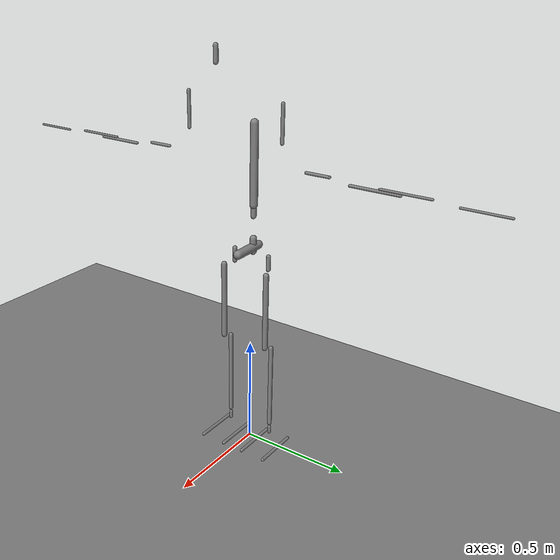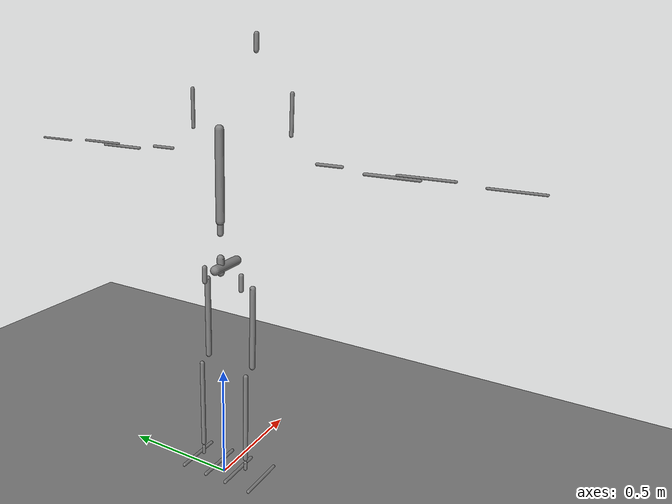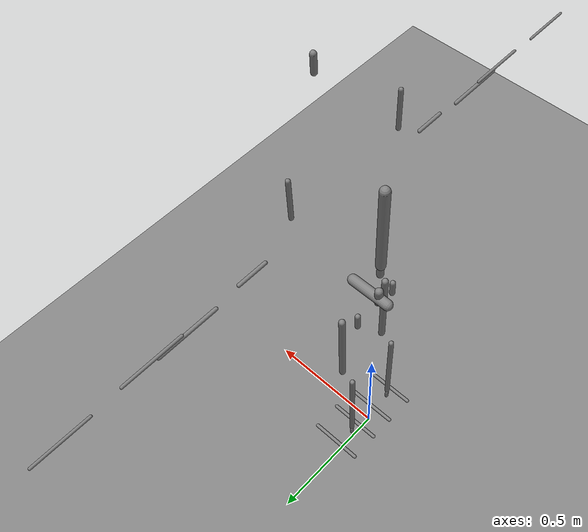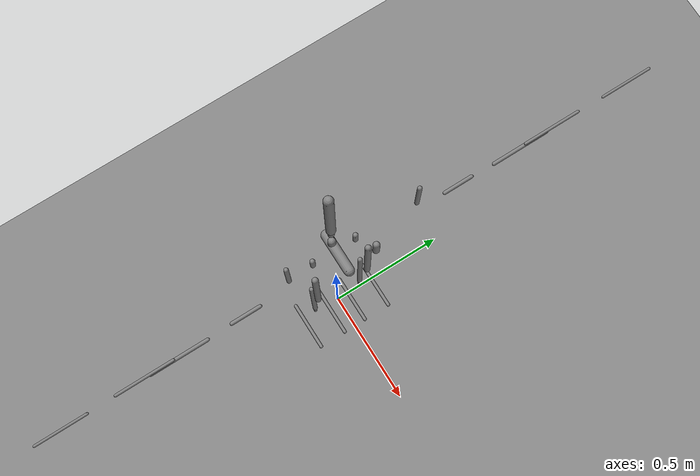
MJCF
<mujoco model="atlas_working_scene">
  <include file="atlas_working.xml" />

  <worldbody>
    <geom name="floor" type="plane" size="10 10 0.1" pos="0 0 0" condim="3" />
    <light pos="0 0 3" dir="0 0 -1" diffuse="0.7 0.7 0.7" />
    <light pos="0 2 2" dir="0 -1 -1" diffuse="0.5 0.5 0.5" />
  </worldbody>
</mujoco>

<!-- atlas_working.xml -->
<mujoco model="atlas">
  <option timestep="0.005" impratio="10" solver="Newton" iterations="200" />
  <compiler angle="radian" autolimits="true" />

  <statistic meansize="0.216123" extent="2.3196" center="-0.000225445 0 0.0799605" />

  <worldbody>
    <body name="pelvis" pos="0 0 0.95">
      <freejoint />
      <inertial pos="0.0111 0 0.0271" quat="0.698584 0.713914 0.0424837 -0.0224092" mass="9.509"
        diaginertia="0.124488 0.116646 0.0957666" />
      <geom type="capsule" fromto="-0.05 0 0.02 0.1 0 0.02" size="0.0200"
        condim="1" solimp=".9 .99 .003" solref=".015 1" contype="1" conaffinity="1" />
      <body name="ltorso" pos="-0.0125 0 0">
        <inertial pos="-0.0112984 -3.15366e-06 0.0746835"
          quat="0.997071 0.000128212 0.076485 -0.00012406" mass="2.27"
          diaginertia="0.003962 0.00341694 0.00169212" />
        <joint name="back_bkz" pos="0 0 0" axis="0 0 1" range="-0.663225 0.663225"
          damping="0.2" stiffness="1" armature="0.01" />
        <geom type="capsule" fromto="0 0 0 0 0 0.06" size="0.0150"
          condim="1" solimp=".9 .99 .003" solref=".015 1" />
        <body name="mtorso" pos="0 0 0.162">
          <inertial pos="-0.00816266 -0.0131245 0.0305974" quat="0.108378 0.49314 0.746335 0.433648"
            mass="0.799" diaginertia="0.000536243 0.000487378 0.000358057" />
          <joint name="back_bky" pos="0 0 0" axis="0 1 0" range="-0.219388 0.538783"
            damping="0.2" stiffness="1" armature="0.01" />
          <geom type="capsule" fromto="0 0 0 0 0 0.04" size="0.0125"
            condim="1" solimp=".9 .99 .003" solref=".015 1" />
          <body name="utorso" pos="0 0 0.05">
            <inertial pos="-0.0616866 0.00229456 0.316809"
              quat="0.483464 -0.0233226 -0.0389662 0.874186" mass="84.609"
              diaginertia="1.67522 1.61265 0.568768" />
            <joint name="back_bkx" pos="0 0 0" axis="1 0 0" range="-0.523599 0.523599"
              damping="0.2" stiffness="1" armature="0.01" />
            <geom type="capsule" fromto="0 0 0 0 0 0.35" size="0.0175"
              condim="1" solimp=".9 .99 .003" solref=".015 1" />
            <body name="l_clav" pos="0.1406 0.2256 0.4776" quat="0 0 0 1">
              <inertial pos="0 0 -0.084" quat="0.684588 0.177029 -0.177029 0.684588" mass="4.466"
                diaginertia="0.011217 0.011 0.00178301" />
              <joint name="l_arm_shz" pos="0 0 0" axis="0 0 1" range="-1.5708 0.785398"
                damping="0.2" stiffness="1" armature="0.01" />
              <geom type="capsule" fromto="0 0 0 0 0 -0.15" size="0.0075"
                condim="1" solimp=".9 .99 .003" solref=".015 1" />
              <body name="l_scap" pos="0 -0.11 -0.245">
                <inertial pos="0 0 0" quat="0.5 0.5 0.5 0.5" mass="3.899"
                  diaginertia="0.00583 0.00583 0.00319" />
                <joint name="l_arm_shx" pos="0 0 0" axis="-1 0 0" range="-1.5708 1.5708"
                  damping="0.2" stiffness="1" armature="0.01" />
                <geom type="capsule" fromto="0 0 0 0 -0.1 0" size="0.0062"
                  condim="1" solimp=".9 .99 .003" solref=".015 1" />
                <body name="l_uarm" pos="0 -0.187 -0.016">
                  <inertial pos="0 0.065 0" quat="0.707107 0.707107 0 0" mass="4.386"
                    diaginertia="0.00656 0.00656 0.00358" />
                  <joint name="l_arm_ely" pos="0 0 0" axis="0 -1 0" range="0 3.14159"
                    damping="0.2" stiffness="1" armature="0.01" />
                  <geom type="capsule" fromto="0 0 0 0 -0.2 0" size="0.0062"
                    condim="1" solimp=".9 .99 .003" solref=".015 1" />
                  <body name="l_larm" pos="0 -0.119 0.0092">
                    <inertial pos="0 0 0" quat="0.5 0.5 0.5 0.5" mass="3.248"
                      diaginertia="0.00446 0.00446 0.00265" />
                    <joint name="l_arm_elx" pos="0 0 0" axis="-1 0 0" range="0 2.35619"
                      damping="0.2" stiffness="1" armature="0.01" />
                    <geom type="capsule" fromto="0 0 0 0 -0.2 0" size="0.0050"
                      condim="1" solimp=".9 .99 .003" solref=".015 1" />
                    <body name="l_ufarm" pos="0 -0.29955 -0.00921" quat="0 0 1 0">
                      <inertial pos="0.00015 0.08296 0.00037" quat="0.707107 0.707107 0 0"
                        mass="2.4798" diaginertia="0.012731 0.011948 0.002857" />
                      <joint name="l_arm_uwy" pos="0 0 0" axis="0 -1 0" range="-3.011 3.011"
                        damping="0.2" stiffness="1" armature="0.01" />
                      <geom type="capsule" fromto="0 0 0 0 -0.18 0" size="0.0045"
                        condim="1" solimp=".9 .99 .003" solref=".015 1" />
                      <body name="l_lfarm">
                        <inertial pos="0.00017 -0.02515 0.00163" quat="0.5 0.5 -0.5 0.5"
                          mass="0.648" diaginertia="0.000825 0.000764 0.000429" />
                        <joint name="l_arm_mwx" pos="0 0 0" axis="1 0 0" range="-1.7628 1.7628"
                          damping="0.2" stiffness="1" armature="0.01" />
                        <geom type="capsule" fromto="0 0 0 0 -0.06 0" size="0.0037"
                          condim="1" solimp=".9 .99 .003" solref=".015 1" />
                        <body name="l_hand" quat="0 0 1 0">
                          <inertial pos="0.000136605 -0.0878643 1.70756e-05"
                            quat="0.706663 0.707538 -0.00305426 -0.0030225" mass="0.6839"
                            diaginertia="0.000555209 0.000546206 0.000486997" />
                          <joint name="l_arm_lwy" pos="0 0 0" axis="0 -1 0" range="-2.9671 2.9671"
                            damping="0.2" stiffness="1" armature="0.01" />
                          <geom type="capsule" fromto="0 0 0 0 -0.08 0" size="0.0030"
                            condim="1" solimp=".9 .99 .003" solref=".015 1" />
                        </body>
                      </body>
                    </body>
                  </body>
                </body>
              </body>
            </body>
            <body name="head" pos="0.2546 0 0.6215">
              <inertial pos="-0.0526114 3.39872e-05 0.0260689"
                quat="-0.00433632 0.59051 -0.00248869 0.807015" mass="2.08756"
                diaginertia="0.0135173 0.0133409 0.0119567" />
              <joint name="neck_ay" pos="0 0 0" axis="0 1 0" range="-0.602139 1.14319"
                damping="0.2" stiffness="1" armature="0.01" />
              <geom type="capsule" fromto="0 0 0 0 0 0.06" size="0.0100"
                condim="1" solimp=".9 .99 .003" solref=".015 1" />
            </body>
            <body name="r_clav" pos="0.1406 -0.2256 0.4776">
              <inertial pos="0 0 -0.084" quat="0.684588 0.177029 -0.177029 0.684588" mass="4.466"
                diaginertia="0.011217 0.011 0.00178301" />
              <joint name="r_arm_shz" pos="0 0 0" axis="0 0 1" range="-0.785398 1.5708"
                damping="0.2" stiffness="1" armature="0.01" />
              <geom type="capsule" fromto="0 0 0 0 0 -0.15" size="0.0075"
                condim="1" solimp=".9 .99 .003" solref=".015 1" />
              <body name="r_scap" pos="0 -0.11 -0.245">
                <inertial pos="0 0 0" quat="0.5 0.5 0.5 0.5" mass="3.899"
                  diaginertia="0.00583 0.00583 0.00319" />
                <joint name="r_arm_shx" pos="0 0 0" axis="1 0 0" range="-1.5708 1.5708"
                  damping="0.2" stiffness="1" armature="0.01" />
                <geom type="capsule" fromto="0 0 0 0 -0.1 0" size="0.0062"
                  condim="1" solimp=".9 .99 .003" solref=".015 1" />
                <body name="r_uarm" pos="0 -0.187 -0.016">
                  <inertial pos="0 0.065 0" quat="0.707107 0.707107 0 0" mass="4.386"
                    diaginertia="0.00656 0.00656 0.00358" />
                  <joint name="r_arm_ely" pos="0 0 0" axis="0 1 0" range="0 3.14159"
                    damping="0.2" stiffness="1" armature="0.01" />
                  <geom type="capsule" fromto="0 0 0 0 -0.2 0" size="0.0062"
                    condim="1" solimp=".9 .99 .003" solref=".015 1" />
                  <body name="r_larm" pos="0 -0.119 0.0092">
                    <inertial pos="0 0 0" quat="0.5 0.5 0.5 0.5" mass="3.248"
                      diaginertia="0.00446 0.00446 0.00265" />
                    <joint name="r_arm_elx" pos="0 0 0" axis="1 0 0" range="-2.35619 0"
                      damping="0.2" stiffness="1" armature="0.01" />
                    <geom type="capsule" fromto="0 0 0 0 -0.2 0" size="0.0050"
                      condim="1" solimp=".9 .99 .003" solref=".015 1" />
                    <body name="r_ufarm" pos="0 -0.29955 -0.00921">
                      <inertial pos="0.00015 0.08296 0.00037" quat="0.707107 0.707107 0 0"
                        mass="2.4798" diaginertia="0.012731 0.011948 0.002857" />
                      <joint name="r_arm_uwy" pos="0 0 0" axis="0 1 0" range="-3.011 3.011"
                        damping="0.2" stiffness="1" armature="0.01" />
                      <geom type="capsule" fromto="0 0 0 0 -0.18 0" size="0.0045"
                        condim="1" solimp=".9 .99 .003" solref=".015 1" />
                      <body name="r_lfarm">
                        <inertial pos="0.00017 -0.02515 0.00163" quat="0.5 0.5 -0.5 0.5"
                          mass="0.648" diaginertia="0.000825 0.000764 0.000429" />
                        <joint name="r_arm_mwx" pos="0 0 0" axis="1 0 0" range="-1.7628 1.7628"
                          damping="0.2" stiffness="1" armature="0.01" />
                        <geom type="capsule" fromto="0 0 0 0 -0.06 0" size="0.0037"
                          condim="1" solimp=".9 .99 .003" solref=".015 1" />
                        <body name="r_hand">
                          <inertial pos="0.000136605 -0.0878643 1.70756e-05"
                            quat="0.706663 0.707538 -0.00305426 -0.0030225" mass="0.6839"
                            diaginertia="0.000555209 0.000546206 0.000486997" />
                          <joint name="r_arm_lwy" pos="0 0 0" axis="0 1 0" range="-2.9671 2.9671"
                            damping="0.2" stiffness="1" armature="0.01" />
                          <geom type="capsule" fromto="0 0 0 0 -0.08 0" size="0.0030"
                            condim="1" solimp=".9 .99 .003" solref=".015 1" />
                        </body>
                      </body>
                    </body>
                  </body>
                </body>
              </body>
            </body>
          </body>
        </body>
      </body>
      <body name="l_uglut" pos="0 0.089 0">
        <inertial pos="0.00529262 -0.00344732 0.00313046"
          quat="0.999122 -7.72169e-05 0.0419028 -0.000305187" mass="1.959"
          diaginertia="0.000745109 0.000688179 0.000410071" />
        <joint name="l_leg_hpz" pos="0 0 0" axis="0 0 1" range="-0.174358 0.786794"
          damping="5" stiffness="10" armature="0.01" />
        <geom type="capsule" fromto="0 0 0 0 0 -0.06" size="0.0100"
          condim="1" solimp=".9 .99 .003" solref=".015 1" />

        <body name="l_lglut">
          <inertial pos="0.0133341 0.0170484 -0.0312052" quat="0.353465 0.600383 0.388609 0.602981"
            mass="0.898" diaginertia="0.00133867 0.000995812 0.000690275" />
          <joint name="l_leg_hpx" pos="0 0 0" axis="1 0 0" range="-0.523599 0.523599"
            damping="5" stiffness="10" armature="0.01" />
          <geom type="capsule" fromto="0 0 0 0 0 -0.06" size="0.0088"
            condim="1" solimp=".9 .99 .003" solref=".015 1" />
          <body name="l_uleg" pos="0.05 0.0225 -0.066">
            <inertial pos="0 0 -0.21" mass="8.204" diaginertia="0.09 0.09 0.02" />
            <joint name="l_leg_hpy" pos="0 0 0" axis="0 1 0" range="-1.61234 0.65764"
              damping="5" stiffness="10" armature="0.01" />
            <geom type="capsule" fromto="0 0 0 0 0 -0.35" size="0.0125"
              condim="1" solimp=".9 .99 .003" solref=".015 1" />
            <body name="l_lleg" pos="-0.05 0 -0.374">
              <inertial pos="0.001 0 -0.187" quat="0.999751 0 0.0223266 0" mass="4.515"
                diaginertia="0.0771341 0.076 0.00986594" />
              <joint name="l_leg_kny" pos="0 0 0" axis="0 1 0" range="0 2.35637"
                damping="5" stiffness="10" armature="0.01" />
              <geom type="capsule" fromto="0 0 0 0 0 -0.4" size="0.0100"
                condim="1" solimp=".9 .99 .003" solref=".015 1" />
              <body name="l_talus" pos="0 0 -0.422">
                <inertial pos="0 0 0" quat="0.5 0.5 -0.5 0.5" mass="0.125"
                  diaginertia="1.30101e-05 1.01674e-05 8.42775e-06" />
                <joint name="l_leg_aky" pos="0 0 0" axis="0 1 0" range="-1 0.7"
                  damping="5" stiffness="10" armature="0.01" />
                <geom type="capsule" fromto="0 0 0 0 0 -0.03" size="0.0075"
                  condim="1" solimp=".9 .99 .003" solref=".015 1" />
                <body name="l_foot">
                  <inertial pos="0.027 0 -0.067" quat="0 0.707107 0 0.707107" mass="2.41"
                    diaginertia="0.008 0.007 0.002" />
                  <joint name="l_leg_akx" pos="0 0 0" axis="1 0 0" range="-0.8 0.8"
                    damping="5" stiffness="10" armature="0.01" />
                  <geom type="capsule" fromto="-.07 -.06 -0.08 0.14 -0.06 -0.08" size="0.0075"
                    condim="1" solimp=".9 .99 .003" solref=".015 1" />
                  <geom type="capsule" fromto="-.07 0.06 -0.08 0.14 0.06 -0.08" size="0.0075"
                    condim="1" solimp=".9 .99 .003" solref=".015 1" />
                </body>
              </body>
            </body>
          </body>
        </body>
      </body>
      <body name="r_uglut" pos="0 -0.089 0">
        <inertial pos="0.00529262 0.00344732 0.00313046"
          quat="0.999122 7.72169e-05 0.0419028 0.000305187" mass="1.959"
          diaginertia="0.000745109 0.000688179 0.000410071" />
        <joint name="r_leg_hpz" pos="0 0 0" axis="0 0 1" range="-0.786794 0.174358"
          damping="5" stiffness="10" armature="0.01" />
        <geom type="capsule" fromto="0 0 0 0 0 -0.06" size="0.0100"
          condim="1" solimp=".9 .99 .003" solref=".015 1" />

        <body name="r_lglut">
          <inertial pos="0.0133341 -0.0170484 -0.0312052" quat="0.602981 0.388609 0.600383 0.353465"
            mass="0.898" diaginertia="0.00133867 0.000995812 0.000690275" />
          <joint name="r_leg_hpx" pos="0 0 0" axis="1 0 0" range="-0.523599 0.523599"
            damping="5" stiffness="10" armature="0.01" />
          <geom type="capsule" fromto="0 0 0 0 0 -0.06" size="0.0088"
            condim="1" solimp=".9 .99 .003" solref=".015 1" />
          <body name="r_uleg" pos="0.05 -0.0225 -0.066">
            <inertial pos="0 0 -0.21" mass="8.204" diaginertia="0.09 0.09 0.02" />
            <joint name="r_leg_hpy" pos="0 0 0" axis="0 1 0" range="-1.61234 0.65764"
              damping="5" stiffness="10" armature="0.01" />
            <geom type="capsule" fromto="0 0 0 0 0 -0.35" size="0.0125"
              condim="1" solimp=".9 .99 .003" solref=".015 1" />
            <body name="r_lleg" pos="-0.05 0 -0.374">
              <inertial pos="0.001 0 -0.187" quat="0.999751 0 0.0223266 0" mass="4.515"
                diaginertia="0.0771341 0.076 0.00986594" />
              <joint name="r_leg_kny" pos="0 0 0" axis="0 1 0" range="0 2.35637"
                damping="5" stiffness="10" armature="0.01" />
              <geom type="capsule" fromto="0 0 0 0 0 -0.4" size="0.0100"
                condim="1" solimp=".9 .99 .003" solref=".015 1" />
              <body name="r_talus" pos="0 0 -0.422">
                <inertial pos="0 0 0" quat="0.5 0.5 -0.5 0.5" mass="0.125"
                  diaginertia="1.30101e-05 1.01674e-05 8.42775e-06" />
                <joint name="r_leg_aky" pos="0 0 0" axis="0 1 0" range="-1 0.7"
                  damping="5" stiffness="10" armature="0.01" />
                <geom type="capsule" fromto="0 0 0 0 0 -0.03" size="0.0075"
                  condim="1" solimp=".9 .99 .003" solref=".015 1" />
                <body name="r_foot">
                  <inertial pos="0.027 0 -0.067" quat="0 0.707107 0 0.707107" mass="2.41"
                    diaginertia="0.008 0.007 0.002" />
                  <joint name="r_leg_akx" pos="0 0 0" axis="1 0 0" range="-0.8 0.8"
                    damping="5" stiffness="10" armature="0.01" />
                  <geom type="capsule" fromto="-.07 -.06 -0.08 0.14 -0.06 -0.08" size="0.0075"
                    condim="1" solimp=".9 .99 .003" solref=".015 1" />
                  <geom type="capsule" fromto="-.07 0.06 -0.08 0.14 0.06 -0.08" size="0.0075"
                    condim="1" solimp=".9 .99 .003" solref=".015 1" />
                </body>
              </body>
            </body>
          </body>
        </body>
      </body>
    </body>
  </worldbody>

  <actuator>
    <motor name="back_bkz_motor" joint="back_bkz" gear="40" />
    <motor name="back_bky_motor" joint="back_bky" gear="40" />
    <motor name="back_bkx_motor" joint="back_bkx" gear="40" />
    <motor name="l_arm_shz_motor" joint="l_arm_shz" gear="20" />
    <motor name="l_arm_shx_motor" joint="l_arm_shx" gear="20" />
    <motor name="l_arm_ely_motor" joint="l_arm_ely" gear="20" />
    <motor name="l_arm_elx_motor" joint="l_arm_elx" gear="20" />
    <motor name="l_arm_uwy_motor" joint="l_arm_uwy" gear="20" />
    <motor name="l_arm_mwx_motor" joint="l_arm_mwx" gear="20" />
    <motor name="l_arm_lwy_motor" joint="l_arm_lwy" gear="20" />
    <motor name="neck_ay_motor" joint="neck_ay" gear="20" />
    <motor name="r_arm_shz_motor" joint="r_arm_shz" gear="20" />
    <motor name="r_arm_shx_motor" joint="r_arm_shx" gear="20" />
    <motor name="r_arm_ely_motor" joint="r_arm_ely" gear="20" />
    <motor name="r_arm_elx_motor" joint="r_arm_elx" gear="20" />
    <motor name="r_arm_uwy_motor" joint="r_arm_uwy" gear="20" />
    <motor name="r_arm_mwx_motor" joint="r_arm_mwx" gear="20" />
    <motor name="r_arm_lwy_motor" joint="r_arm_lwy" gear="20" />
    <motor name="l_leg_hpz_motor" joint="l_leg_hpz" gear="40" />
    <motor name="l_leg_hpx_motor" joint="l_leg_hpx" gear="40" />
    <motor name="l_leg_hpy_motor" joint="l_leg_hpy" gear="80" />
    <motor name="l_leg_kny_motor" joint="l_leg_kny" gear="80" />
    <motor name="l_leg_aky_motor" joint="l_leg_aky" gear="20" />
    <motor name="l_leg_akx_motor" joint="l_leg_akx" gear="20" />
    <motor name="r_leg_hpz_motor" joint="r_leg_hpz" gear="40" />
    <motor name="r_leg_hpx_motor" joint="r_leg_hpx" gear="40" />
    <motor name="r_leg_hpy_motor" joint="r_leg_hpy" gear="80" />
    <motor name="r_leg_kny_motor" joint="r_leg_kny" gear="80" />
    <motor name="r_leg_aky_motor" joint="r_leg_aky" gear="20" />
    <motor name="r_leg_akx_motor" joint="r_leg_akx" gear="20" />
  </actuator>

  <contact>
    <exclude body1="pelvis" body2="l_uglut"/>
    <exclude body1="pelvis" body2="r_uglut"/>
  </contact>
</mujoco>
